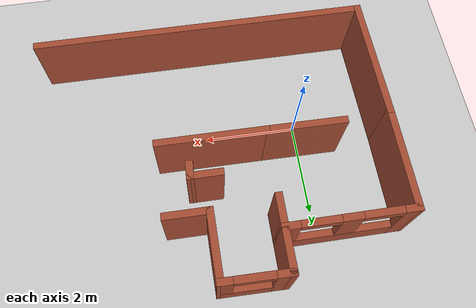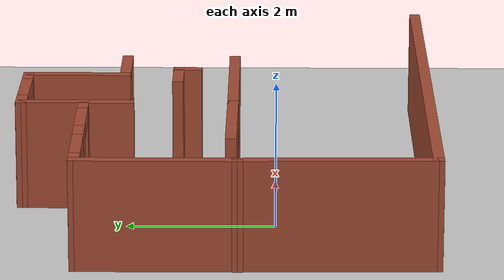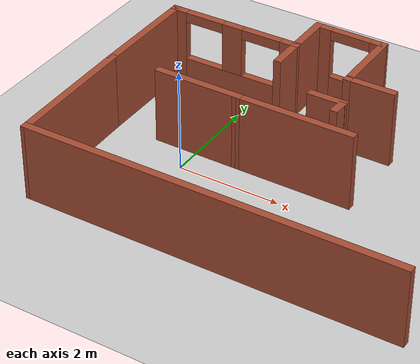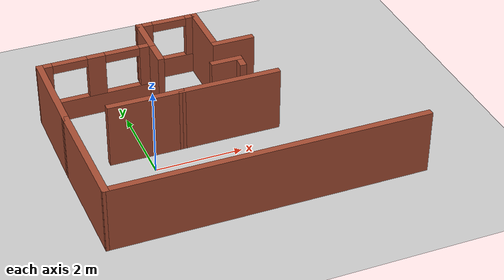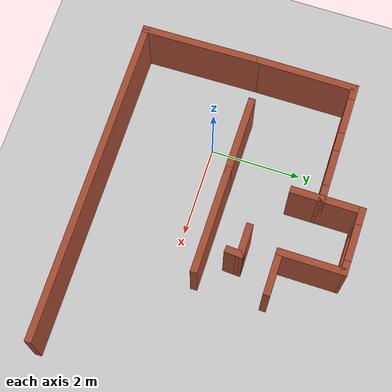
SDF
<sdf version="1.7">
 <world name="default">
  <model name="ground_plane">
   <static>1</static>
   <link name="link">
    <collision name="collision">
     <geometry><plane><normal>0 0 1</normal><size>100 100</size></plane></geometry>
     <surface><friction><ode><mu>100</mu><mu2>50</mu2></ode></friction></surface>
    </collision>
    <visual name="visual">
     <cast_shadows>0</cast_shadows>
     <geometry><plane><normal>0 0 1</normal><size>100 100</size></plane></geometry>
     <material>
      <script><uri>file://media/materials/scripts/gazebo.material</uri><name>Gazebo/Grey</name></script>
     </material>
    </visual>
   </link>
  </model>
  <model name="floorplan">
   <link name="Wall_54">
    <pose>-3.45985 0.603649 0 0 -0 0.004231</pose>
    <visual name="Wall_54_Visual_0">
     <pose>-1.19888 0 0.75 0 -0 0</pose>
     <geometry><box><size>0.35223 0.15 1.5</size></box></geometry>
     <material>
      <script><uri>file://media/materials/scripts/gazebo.material</uri><name>Gazebo/Bricks</name></script>
      <ambient>1 1 1 1</ambient>
      <shader type="pixel"/>
     </material>
     <meta><layer>0</layer></meta>
    </visual>
    <visual name="Wall_54_Visual_1">
     <pose>0.176115 0 0.25 0 -0 0</pose>
     <geometry><box><size>2.39777 0.15 0.5</size></box></geometry>
     <material>
      <script><uri>file://media/materials/scripts/gazebo.material</uri><name>Gazebo/Bricks</name></script>
      <ambient>1 1 1 1</ambient>
      <shader type="pixel"/>
     </material>
     <meta><layer>0</layer></meta>
    </visual>
    <visual name="Wall_54_Visual_2">
     <pose>-0.013166 0 1 0 -0 0</pose>
     <geometry><box><size>0.419208 0.15 1</size></box></geometry>
     <material>
      <script><uri>file://media/materials/scripts/gazebo.material</uri><name>Gazebo/Bricks</name></script>
      <ambient>1 1 1 1</ambient>
      <shader type="pixel"/>
     </material>
     <meta><layer>0</layer></meta>
    </visual>
    <visual name="Wall_54_Visual_3">
     <pose>1.18572 0 1 0 -0 0</pose>
     <geometry><box><size>0.378562 0.15 1</size></box></geometry>
     <material>
      <script><uri>file://media/materials/scripts/gazebo.material</uri><name>Gazebo/Bricks</name></script>
      <ambient>1 1 1 1</ambient>
      <shader type="pixel"/>
     </material>
     <meta><layer>0</layer></meta>
    </visual>
    <visual name="Wall_54_Visual_4">
     <pose>-0.62277 0 1.4 0 -0 0</pose>
     <geometry><box><size>0.8 0.15 0.2</size></box></geometry>
     <material>
      <script><uri>file://media/materials/scripts/gazebo.material</uri><name>Gazebo/Bricks</name></script>
      <ambient>1 1 1 1</ambient>
      <shader type="pixel"/>
     </material>
     <meta><layer>0</layer></meta>
    </visual>
    <visual name="Wall_54_Visual_5">
     <pose>0.596438 0 1.4 0 -0 0</pose>
     <geometry><box><size>0.8 0.15 0.2</size></box></geometry>
     <material>
      <script><uri>file://media/materials/scripts/gazebo.material</uri><name>Gazebo/Bricks</name></script>
      <ambient>1 1 1 1</ambient>
      <shader type="pixel"/>
     </material>
     <meta><layer>0</layer></meta>
    </visual>
    <collision name="Wall_54_Collision_0">
     <pose>-1.19888 0 0.75 0 -0 0</pose>
     <geometry><box><size>0.35223 0.15 1.5</size></box></geometry>
     <surface>
      <friction>
       <ode><mu>1</mu><mu2>1</mu2><fdir1>0 0 0</fdir1><slip1>0</slip1><slip2>0</slip2></ode>
       <torsional>
        <coefficient>1</coefficient>
        <patch_radius>0</patch_radius>
        <surface_radius>0</surface_radius>
        <use_patch_radius>1</use_patch_radius>
        <ode><slip>0</slip></ode>
       </torsional>
      </friction>
      <bounce><restitution_coefficient>0</restitution_coefficient><threshold>1e+06</threshold></bounce>
      <contact>
       <collide_without_contact>0</collide_without_contact>
       <collide_without_contact_bitmask>1</collide_without_contact_bitmask>
       <collide_bitmask>1</collide_bitmask>
       <ode>
        <soft_cfm>0</soft_cfm>
        <soft_erp>0.2</soft_erp>
        <kp>1e+13</kp>
        <kd>1</kd>
        <max_vel>0.01</max_vel>
        <min_depth>0</min_depth>
       </ode>
       <bullet>
        <split_impulse>1</split_impulse>
        <split_impulse_penetration_threshold>-0.01</split_impulse_penetration_threshold>
        <soft_cfm>0</soft_cfm>
        <soft_erp>0.2</soft_erp>
        <kp>1e+13</kp>
        <kd>1</kd>
       </bullet>
      </contact>
     </surface>
    </collision>
    <collision name="Wall_54_Collision_1">
     <pose>0.176115 0 0.25 0 -0 0</pose>
     <geometry><box><size>2.39777 0.15 0.5</size></box></geometry>
     <surface>
      <friction>
       <ode><mu>1</mu><mu2>1</mu2><fdir1>0 0 0</fdir1><slip1>0</slip1><slip2>0</slip2></ode>
       <torsional>
        <coefficient>1</coefficient>
        <patch_radius>0</patch_radius>
        <surface_radius>0</surface_radius>
        <use_patch_radius>1</use_patch_radius>
        <ode><slip>0</slip></ode>
       </torsional>
      </friction>
      <bounce><restitution_coefficient>0</restitution_coefficient><threshold>1e+06</threshold></bounce>
      <contact>
       <collide_without_contact>0</collide_without_contact>
       <collide_without_contact_bitmask>1</collide_without_contact_bitmask>
       <collide_bitmask>1</collide_bitmask>
       <ode>
        <soft_cfm>0</soft_cfm>
        <soft_erp>0.2</soft_erp>
        <kp>1e+13</kp>
        <kd>1</kd>
        <max_vel>0.01</max_vel>
        <min_depth>0</min_depth>
       </ode>
       <bullet>
        <split_impulse>1</split_impulse>
        <split_impulse_penetration_threshold>-0.01</split_impulse_penetration_threshold>
        <soft_cfm>0</soft_cfm>
        <soft_erp>0.2</soft_erp>
        <kp>1e+13</kp>
        <kd>1</kd>
       </bullet>
      </contact>
     </surface>
    </collision>
    <collision name="Wall_54_Collision_2">
     <pose>-0.013166 0 1 0 -0 0</pose>
     <geometry><box><size>0.419208 0.15 1</size></box></geometry>
     <surface>
      <friction>
       <ode><mu>1</mu><mu2>1</mu2><fdir1>0 0 0</fdir1><slip1>0</slip1><slip2>0</slip2></ode>
       <torsional>
        <coefficient>1</coefficient>
        <patch_radius>0</patch_radius>
        <surface_radius>0</surface_radius>
        <use_patch_radius>1</use_patch_radius>
        <ode><slip>0</slip></ode>
       </torsional>
      </friction>
      <bounce><restitution_coefficient>0</restitution_coefficient><threshold>1e+06</threshold></bounce>
      <contact>
       <collide_without_contact>0</collide_without_contact>
       <collide_without_contact_bitmask>1</collide_without_contact_bitmask>
       <collide_bitmask>1</collide_bitmask>
       <ode>
        <soft_cfm>0</soft_cfm>
        <soft_erp>0.2</soft_erp>
        <kp>1e+13</kp>
        <kd>1</kd>
        <max_vel>0.01</max_vel>
        <min_depth>0</min_depth>
       </ode>
       <bullet>
        <split_impulse>1</split_impulse>
        <split_impulse_penetration_threshold>-0.01</split_impulse_penetration_threshold>
        <soft_cfm>0</soft_cfm>
        <soft_erp>0.2</soft_erp>
        <kp>1e+13</kp>
        <kd>1</kd>
       </bullet>
      </contact>
     </surface>
    </collision>
    <collision name="Wall_54_Collision_3">
     <pose>1.18572 0 1 0 -0 0</pose>
     <geometry><box><size>0.378562 0.15 1</size></box></geometry>
     <surface>
      <friction>
       <ode><mu>1</mu><mu2>1</mu2><fdir1>0 0 0</fdir1><slip1>0</slip1><slip2>0</slip2></ode>
       <torsional>
        <coefficient>1</coefficient>
        <patch_radius>0</patch_radius>
        <surface_radius>0</surface_radius>
        <use_patch_radius>1</use_patch_radius>
        <ode><slip>0</slip></ode>
       </torsional>
      </friction>
      <bounce><restitution_coefficient>0</restitution_coefficient><threshold>1e+06</threshold></bounce>
      <contact>
       <collide_without_contact>0</collide_without_contact>
       <collide_without_contact_bitmask>1</collide_without_contact_bitmask>
       <collide_bitmask>1</collide_bitmask>
       <ode>
        <soft_cfm>0</soft_cfm>
        <soft_erp>0.2</soft_erp>
        <kp>1e+13</kp>
        <kd>1</kd>
        <max_vel>0.01</max_vel>
        <min_depth>0</min_depth>
       </ode>
       <bullet>
        <split_impulse>1</split_impulse>
        <split_impulse_penetration_threshold>-0.01</split_impulse_penetration_threshold>
        <soft_cfm>0</soft_cfm>
        <soft_erp>0.2</soft_erp>
        <kp>1e+13</kp>
        <kd>1</kd>
       </bullet>
      </contact>
     </surface>
    </collision>
    <collision name="Wall_54_Collision_4">
     <pose>-0.62277 0 1.4 0 -0 0</pose>
     <geometry><box><size>0.8 0.15 0.2</size></box></geometry>
     <surface>
      <friction>
       <ode><mu>1</mu><mu2>1</mu2><fdir1>0 0 0</fdir1><slip1>0</slip1><slip2>0</slip2></ode>
       <torsional>
        <coefficient>1</coefficient>
        <patch_radius>0</patch_radius>
        <surface_radius>0</surface_radius>
        <use_patch_radius>1</use_patch_radius>
        <ode><slip>0</slip></ode>
       </torsional>
      </friction>
      <bounce><restitution_coefficient>0</restitution_coefficient><threshold>1e+06</threshold></bounce>
      <contact>
       <collide_without_contact>0</collide_without_contact>
       <collide_without_contact_bitmask>1</collide_without_contact_bitmask>
       <collide_bitmask>1</collide_bitmask>
       <ode>
        <soft_cfm>0</soft_cfm>
        <soft_erp>0.2</soft_erp>
        <kp>1e+13</kp>
        <kd>1</kd>
        <max_vel>0.01</max_vel>
        <min_depth>0</min_depth>
       </ode>
       <bullet>
        <split_impulse>1</split_impulse>
        <split_impulse_penetration_threshold>-0.01</split_impulse_penetration_threshold>
        <soft_cfm>0</soft_cfm>
        <soft_erp>0.2</soft_erp>
        <kp>1e+13</kp>
        <kd>1</kd>
       </bullet>
      </contact>
     </surface>
    </collision>
    <collision name="Wall_54_Collision_5">
     <pose>0.596438 0 1.4 0 -0 0</pose>
     <geometry><box><size>0.8 0.15 0.2</size></box></geometry>
     <surface>
      <friction>
       <ode><mu>1</mu><mu2>1</mu2><fdir1>0 0 0</fdir1><slip1>0</slip1><slip2>0</slip2></ode>
       <torsional>
        <coefficient>1</coefficient>
        <patch_radius>0</patch_radius>
        <surface_radius>0</surface_radius>
        <use_patch_radius>1</use_patch_radius>
        <ode><slip>0</slip></ode>
       </torsional>
      </friction>
      <bounce><restitution_coefficient>0</restitution_coefficient><threshold>1e+06</threshold></bounce>
      <contact>
       <collide_without_contact>0</collide_without_contact>
       <collide_without_contact_bitmask>1</collide_without_contact_bitmask>
       <collide_bitmask>1</collide_bitmask>
       <ode>
        <soft_cfm>0</soft_cfm>
        <soft_erp>0.2</soft_erp>
        <kp>1e+13</kp>
        <kd>1</kd>
        <max_vel>0.01</max_vel>
        <min_depth>0</min_depth>
       </ode>
       <bullet>
        <split_impulse>1</split_impulse>
        <split_impulse_penetration_threshold>-0.01</split_impulse_penetration_threshold>
        <soft_cfm>0</soft_cfm>
        <soft_erp>0.2</soft_erp>
        <kp>1e+13</kp>
        <kd>1</kd>
       </bullet>
      </contact>
     </surface>
    </collision>
   </link>
   <link name="Wall_56">
    <pose>-2.15985 0.303649 0 0 0 -1.5708</pose>
    <visual name="Wall_56_Visual">
     <pose>0 0 0.75 0 -0 0</pose>
     <geometry><box><size>0.761 0.15 1.5</size></box></geometry>
     <material>
      <script><uri>file://media/materials/scripts/gazebo.material</uri><name>Gazebo/Bricks</name></script>
      <ambient>1 1 1 1</ambient>
      <shader type="pixel"/>
     </material>
     <meta><layer>0</layer></meta>
    </visual>
    <collision name="Wall_56_Collision">
     <pose>0 0 0.75 0 -0 0</pose>
     <geometry><box><size>0.761 0.15 1.5</size></box></geometry>
     <surface>
      <friction>
       <ode><mu>1</mu><mu2>1</mu2><fdir1>0 0 0</fdir1><slip1>0</slip1><slip2>0</slip2></ode>
       <torsional>
        <coefficient>1</coefficient>
        <patch_radius>0</patch_radius>
        <surface_radius>0</surface_radius>
        <use_patch_radius>1</use_patch_radius>
        <ode><slip>0</slip></ode>
       </torsional>
      </friction>
      <bounce><restitution_coefficient>0</restitution_coefficient><threshold>1e+06</threshold></bounce>
      <contact>
       <collide_without_contact>0</collide_without_contact>
       <collide_without_contact_bitmask>1</collide_without_contact_bitmask>
       <collide_bitmask>1</collide_bitmask>
       <ode>
        <soft_cfm>0</soft_cfm>
        <soft_erp>0.2</soft_erp>
        <kp>1e+13</kp>
        <kd>1</kd>
        <max_vel>0.01</max_vel>
        <min_depth>0</min_depth>
       </ode>
       <bullet>
        <split_impulse>1</split_impulse>
        <split_impulse_penetration_threshold>-0.01</split_impulse_penetration_threshold>
        <soft_cfm>0</soft_cfm>
        <soft_erp>0.2</soft_erp>
        <kp>1e+13</kp>
        <kd>1</kd>
       </bullet>
      </contact>
     </surface>
    </collision>
   </link>
   <link name="Wall_58">
    <pose>-2.15985 1.03465 0 0 -0 1.5708</pose>
    <visual name="Wall_58_Visual">
     <pose>0 0 0.75 0 -0 0</pose>
     <geometry><box><size>1.00024 0.15 1.5</size></box></geometry>
     <material>
      <script><uri>file://media/materials/scripts/gazebo.material</uri><name>Gazebo/Bricks</name></script>
      <ambient>1 1 1 1</ambient>
      <shader type="pixel"/>
     </material>
     <meta><layer>0</layer></meta>
    </visual>
    <collision name="Wall_58_Collision">
     <pose>0 0 0.75 0 -0 0</pose>
     <geometry><box><size>1.00024 0.15 1.5</size></box></geometry>
     <surface>
      <friction>
       <ode><mu>1</mu><mu2>1</mu2><fdir1>0 0 0</fdir1><slip1>0</slip1><slip2>0</slip2></ode>
       <torsional>
        <coefficient>1</coefficient>
        <patch_radius>0</patch_radius>
        <surface_radius>0</surface_radius>
        <use_patch_radius>1</use_patch_radius>
        <ode><slip>0</slip></ode>
       </torsional>
      </friction>
      <bounce><restitution_coefficient>0</restitution_coefficient><threshold>1e+06</threshold></bounce>
      <contact>
       <collide_without_contact>0</collide_without_contact>
       <collide_without_contact_bitmask>1</collide_without_contact_bitmask>
       <collide_bitmask>1</collide_bitmask>
       <ode>
        <soft_cfm>0</soft_cfm>
        <soft_erp>0.2</soft_erp>
        <kp>1e+13</kp>
        <kd>1</kd>
        <max_vel>0.01</max_vel>
        <min_depth>0</min_depth>
       </ode>
       <bullet>
        <split_impulse>1</split_impulse>
        <split_impulse_penetration_threshold>-0.01</split_impulse_penetration_threshold>
        <soft_cfm>0</soft_cfm>
        <soft_erp>0.2</soft_erp>
        <kp>1e+13</kp>
        <kd>1</kd>
       </bullet>
      </contact>
     </surface>
    </collision>
   </link>
   <link name="Wall_60">
    <pose>-1.48485 1.45415 0 0 0 -0.008889</pose>
    <visual name="Wall_60_Visual_0">
     <pose>-0.557435 0 0.75 0 -0 0</pose>
     <geometry><box><size>0.38513 0.15 1.5</size></box></geometry>
     <material>
      <script><uri>file://media/materials/scripts/gazebo.material</uri><name>Gazebo/Bricks</name></script>
      <ambient>1 1 1 1</ambient>
      <shader type="pixel"/>
     </material>
     <meta><layer>0</layer></meta>
    </visual>
    <visual name="Wall_60_Visual_1">
     <pose>0.192565 0 0.25 0 -0 0</pose>
     <geometry><box><size>1.11487 0.15 0.5</size></box></geometry>
     <material>
      <script><uri>file://media/materials/scripts/gazebo.material</uri><name>Gazebo/Bricks</name></script>
      <ambient>1 1 1 1</ambient>
      <shader type="pixel"/>
     </material>
     <meta><layer>0</layer></meta>
    </visual>
    <visual name="Wall_60_Visual_2">
     <pose>0.592565 0 1 0 -0 0</pose>
     <geometry><box><size>0.31487 0.15 1</size></box></geometry>
     <material>
      <script><uri>file://media/materials/scripts/gazebo.material</uri><name>Gazebo/Bricks</name></script>
      <ambient>1 1 1 1</ambient>
      <shader type="pixel"/>
     </material>
     <meta><layer>0</layer></meta>
    </visual>
    <visual name="Wall_60_Visual_3">
     <pose>0.03513 0 1.4 0 -0 0</pose>
     <geometry><box><size>0.8 0.15 0.2</size></box></geometry>
     <material>
      <script><uri>file://media/materials/scripts/gazebo.material</uri><name>Gazebo/Bricks</name></script>
      <ambient>1 1 1 1</ambient>
      <shader type="pixel"/>
     </material>
     <meta><layer>0</layer></meta>
    </visual>
    <collision name="Wall_60_Collision_0">
     <pose>-0.557435 0 0.75 0 -0 0</pose>
     <geometry><box><size>0.38513 0.15 1.5</size></box></geometry>
     <surface>
      <friction>
       <ode><mu>1</mu><mu2>1</mu2><fdir1>0 0 0</fdir1><slip1>0</slip1><slip2>0</slip2></ode>
       <torsional>
        <coefficient>1</coefficient>
        <patch_radius>0</patch_radius>
        <surface_radius>0</surface_radius>
        <use_patch_radius>1</use_patch_radius>
        <ode><slip>0</slip></ode>
       </torsional>
      </friction>
      <bounce><restitution_coefficient>0</restitution_coefficient><threshold>1e+06</threshold></bounce>
      <contact>
       <collide_without_contact>0</collide_without_contact>
       <collide_without_contact_bitmask>1</collide_without_contact_bitmask>
       <collide_bitmask>1</collide_bitmask>
       <ode>
        <soft_cfm>0</soft_cfm>
        <soft_erp>0.2</soft_erp>
        <kp>1e+13</kp>
        <kd>1</kd>
        <max_vel>0.01</max_vel>
        <min_depth>0</min_depth>
       </ode>
       <bullet>
        <split_impulse>1</split_impulse>
        <split_impulse_penetration_threshold>-0.01</split_impulse_penetration_threshold>
        <soft_cfm>0</soft_cfm>
        <soft_erp>0.2</soft_erp>
        <kp>1e+13</kp>
        <kd>1</kd>
       </bullet>
      </contact>
     </surface>
    </collision>
    <collision name="Wall_60_Collision_1">
     <pose>0.192565 0 0.25 0 -0 0</pose>
     <geometry><box><size>1.11487 0.15 0.5</size></box></geometry>
     <surface>
      <friction>
       <ode><mu>1</mu><mu2>1</mu2><fdir1>0 0 0</fdir1><slip1>0</slip1><slip2>0</slip2></ode>
       <torsional>
        <coefficient>1</coefficient>
        <patch_radius>0</patch_radius>
        <surface_radius>0</surface_radius>
        <use_patch_radius>1</use_patch_radius>
        <ode><slip>0</slip></ode>
       </torsional>
      </friction>
      <bounce><restitution_coefficient>0</restitution_coefficient><threshold>1e+06</threshold></bounce>
      <contact>
       <collide_without_contact>0</collide_without_contact>
       <collide_without_contact_bitmask>1</collide_without_contact_bitmask>
       <collide_bitmask>1</collide_bitmask>
       <ode>
        <soft_cfm>0</soft_cfm>
        <soft_erp>0.2</soft_erp>
        <kp>1e+13</kp>
        <kd>1</kd>
        <max_vel>0.01</max_vel>
        <min_depth>0</min_depth>
       </ode>
       <bullet>
        <split_impulse>1</split_impulse>
        <split_impulse_penetration_threshold>-0.01</split_impulse_penetration_threshold>
        <soft_cfm>0</soft_cfm>
        <soft_erp>0.2</soft_erp>
        <kp>1e+13</kp>
        <kd>1</kd>
       </bullet>
      </contact>
     </surface>
    </collision>
    <collision name="Wall_60_Collision_3">
     <pose>0.03513 0 1.4 0 -0 0</pose>
     <geometry><box><size>0.8 0.15 0.2</size></box></geometry>
     <surface>
      <friction>
       <ode><mu>1</mu><mu2>1</mu2><fdir1>0 0 0</fdir1><slip1>0</slip1><slip2>0</slip2></ode>
       <torsional>
        <coefficient>1</coefficient>
        <patch_radius>0</patch_radius>
        <surface_radius>0</surface_radius>
        <use_patch_radius>1</use_patch_radius>
        <ode><slip>0</slip></ode>
       </torsional>
      </friction>
      <bounce><restitution_coefficient>0</restitution_coefficient><threshold>1e+06</threshold></bounce>
      <contact>
       <collide_without_contact>0</collide_without_contact>
       <collide_without_contact_bitmask>1</collide_without_contact_bitmask>
       <collide_bitmask>1</collide_bitmask>
       <ode>
        <soft_cfm>0</soft_cfm>
        <soft_erp>0.2</soft_erp>
        <kp>1e+13</kp>
        <kd>1</kd>
        <max_vel>0.01</max_vel>
        <min_depth>0</min_depth>
       </ode>
       <bullet>
        <split_impulse>1</split_impulse>
        <split_impulse_penetration_threshold>-0.01</split_impulse_penetration_threshold>
        <soft_cfm>0</soft_cfm>
        <soft_erp>0.2</soft_erp>
        <kp>1e+13</kp>
        <kd>1</kd>
       </bullet>
      </contact>
     </surface>
    </collision>
    <collision name="Wall_60_Collision_2">
     <pose>0.592565 0 1 0 -0 0</pose>
     <geometry><box><size>0.31487 0.15 1</size></box></geometry>
     <surface>
      <friction>
       <ode><mu>1</mu><mu2>1</mu2><fdir1>0 0 0</fdir1><slip1>0</slip1><slip2>0</slip2></ode>
       <torsional>
        <coefficient>1</coefficient>
        <patch_radius>0</patch_radius>
        <surface_radius>0</surface_radius>
        <use_patch_radius>1</use_patch_radius>
        <ode><slip>0</slip></ode>
       </torsional>
      </friction>
      <bounce><restitution_coefficient>0</restitution_coefficient><threshold>1e+06</threshold></bounce>
      <contact>
       <collide_without_contact>0</collide_without_contact>
       <collide_without_contact_bitmask>1</collide_without_contact_bitmask>
       <collide_bitmask>1</collide_bitmask>
       <ode>
        <soft_cfm>0</soft_cfm>
        <soft_erp>0.2</soft_erp>
        <kp>1e+13</kp>
        <kd>1</kd>
        <max_vel>0.01</max_vel>
        <min_depth>0</min_depth>
       </ode>
       <bullet>
        <split_impulse>1</split_impulse>
        <split_impulse_penetration_threshold>-0.01</split_impulse_penetration_threshold>
        <soft_cfm>0</soft_cfm>
        <soft_erp>0.2</soft_erp>
        <kp>1e+13</kp>
        <kd>1</kd>
       </bullet>
      </contact>
     </surface>
    </collision>
   </link>
   <link name="Wall_61">
    <pose>-0.809851 0.773149 0 0 0 -1.5708</pose>
    <visual name="Wall_61_Visual">
     <pose>0 0 0.75 0 -0 0</pose>
     <geometry><box><size>1.5 0.15 1.5</size></box></geometry>
     <material>
      <script><uri>file://media/materials/scripts/gazebo.material</uri><name>Gazebo/Bricks</name></script>
      <ambient>1 1 1 1</ambient>
      <shader type="pixel"/>
     </material>
     <meta><layer>0</layer></meta>
    </visual>
    <collision name="Wall_61_Collision">
     <pose>0 0 0.75 0 -0 0</pose>
     <geometry><box><size>1.5 0.15 1.5</size></box></geometry>
     <surface>
      <friction>
       <ode><mu>1</mu><mu2>1</mu2><fdir1>0 0 0</fdir1><slip1>0</slip1><slip2>0</slip2></ode>
       <torsional>
        <coefficient>1</coefficient>
        <patch_radius>0</patch_radius>
        <surface_radius>0</surface_radius>
        <use_patch_radius>1</use_patch_radius>
        <ode><slip>0</slip></ode>
       </torsional>
      </friction>
      <bounce><restitution_coefficient>0</restitution_coefficient><threshold>1e+06</threshold></bounce>
      <contact>
       <collide_without_contact>0</collide_without_contact>
       <collide_without_contact_bitmask>1</collide_without_contact_bitmask>
       <collide_bitmask>1</collide_bitmask>
       <ode>
        <soft_cfm>0</soft_cfm>
        <soft_erp>0.2</soft_erp>
        <kp>1e+13</kp>
        <kd>1</kd>
        <max_vel>0.01</max_vel>
        <min_depth>0</min_depth>
       </ode>
       <bullet>
        <split_impulse>1</split_impulse>
        <split_impulse_penetration_threshold>-0.01</split_impulse_penetration_threshold>
        <soft_cfm>0</soft_cfm>
        <soft_erp>0.2</soft_erp>
        <kp>1e+13</kp>
        <kd>1</kd>
       </bullet>
      </contact>
     </surface>
    </collision>
   </link>
   <link name="Wall_62">
    <pose>-0.379351 0.098149 0 0 -0 0</pose>
    <visual name="Wall_62_Visual">
     <pose>0 0 0.75 0 -0 0</pose>
     <geometry><box><size>1.011 0.15 1.5</size></box></geometry>
     <material>
      <script><uri>file://media/materials/scripts/gazebo.material</uri><name>Gazebo/Bricks</name></script>
      <ambient>1 1 1 1</ambient>
      <shader type="pixel"/>
     </material>
     <meta><layer>0</layer></meta>
    </visual>
    <collision name="Wall_62_Collision">
     <pose>0 0 0.75 0 -0 0</pose>
     <geometry><box><size>1.011 0.15 1.5</size></box></geometry>
     <surface>
      <friction>
       <ode><mu>1</mu><mu2>1</mu2><fdir1>0 0 0</fdir1><slip1>0</slip1><slip2>0</slip2></ode>
       <torsional>
        <coefficient>1</coefficient>
        <patch_radius>0</patch_radius>
        <surface_radius>0</surface_radius>
        <use_patch_radius>1</use_patch_radius>
        <ode><slip>0</slip></ode>
       </torsional>
      </friction>
      <bounce><restitution_coefficient>0</restitution_coefficient><threshold>1e+06</threshold></bounce>
      <contact>
       <collide_without_contact>0</collide_without_contact>
       <collide_without_contact_bitmask>1</collide_without_contact_bitmask>
       <collide_bitmask>1</collide_bitmask>
       <ode>
        <soft_cfm>0</soft_cfm>
        <soft_erp>0.2</soft_erp>
        <kp>1e+13</kp>
        <kd>1</kd>
        <max_vel>0.01</max_vel>
        <min_depth>0</min_depth>
       </ode>
       <bullet>
        <split_impulse>1</split_impulse>
        <split_impulse_penetration_threshold>-0.01</split_impulse_penetration_threshold>
        <soft_cfm>0</soft_cfm>
        <soft_erp>0.2</soft_erp>
        <kp>1e+13</kp>
        <kd>1</kd>
       </bullet>
      </contact>
     </surface>
    </collision>
   </link>
   <link name="Wall_70">
    <pose>-0.529351 -0.768351 0 0 -0 1.51111</pose>
    <visual name="Wall_70_Visual">
     <pose>0 0 0.75 0 -0 0</pose>
     <geometry><box><size>0.40097 0.15 1.5</size></box></geometry>
     <material>
      <script><uri>file://media/materials/scripts/gazebo.material</uri><name>Gazebo/Bricks</name></script>
      <ambient>1 1 1 1</ambient>
      <shader type="pixel"/>
     </material>
     <meta><layer>0</layer></meta>
    </visual>
    <collision name="Wall_70_Collision">
     <pose>0 0 0.75 0 -0 0</pose>
     <geometry><box><size>0.40097 0.15 1.5</size></box></geometry>
     <surface>
      <friction>
       <ode><mu>1</mu><mu2>1</mu2><fdir1>0 0 0</fdir1><slip1>0</slip1><slip2>0</slip2></ode>
       <torsional>
        <coefficient>1</coefficient>
        <patch_radius>0</patch_radius>
        <surface_radius>0</surface_radius>
        <use_patch_radius>1</use_patch_radius>
        <ode><slip>0</slip></ode>
       </torsional>
      </friction>
      <bounce><restitution_coefficient>0</restitution_coefficient><threshold>1e+06</threshold></bounce>
      <contact>
       <collide_without_contact>0</collide_without_contact>
       <collide_without_contact_bitmask>1</collide_without_contact_bitmask>
       <collide_bitmask>1</collide_bitmask>
       <ode>
        <soft_cfm>0</soft_cfm>
        <soft_erp>0.2</soft_erp>
        <kp>1e+13</kp>
        <kd>1</kd>
        <max_vel>0.01</max_vel>
        <min_depth>0</min_depth>
       </ode>
       <bullet>
        <split_impulse>1</split_impulse>
        <split_impulse_penetration_threshold>-0.01</split_impulse_penetration_threshold>
        <soft_cfm>0</soft_cfm>
        <soft_erp>0.2</soft_erp>
        <kp>1e+13</kp>
        <kd>1</kd>
       </bullet>
      </contact>
     </surface>
    </collision>
   </link>
   <link name="Wall_71">
    <pose>-0.821851 -0.642851 0 0 -0 3.14159</pose>
    <visual name="Wall_71_Visual">
     <pose>0 0 0.75 0 -0 0</pose>
     <geometry><box><size>0.75 0.15 1.5</size></box></geometry>
     <material>
      <script><uri>file://media/materials/scripts/gazebo.material</uri><name>Gazebo/Bricks</name></script>
      <ambient>1 1 1 1</ambient>
      <shader type="pixel"/>
     </material>
     <meta><layer>0</layer></meta>
    </visual>
    <collision name="Wall_71_Collision">
     <pose>0 0 0.75 0 -0 0</pose>
     <geometry><box><size>0.75 0.15 1.5</size></box></geometry>
     <surface>
      <friction>
       <ode><mu>1</mu><mu2>1</mu2><fdir1>0 0 0</fdir1><slip1>0</slip1><slip2>0</slip2></ode>
       <torsional>
        <coefficient>1</coefficient>
        <patch_radius>0</patch_radius>
        <surface_radius>0</surface_radius>
        <use_patch_radius>1</use_patch_radius>
        <ode><slip>0</slip></ode>
       </torsional>
      </friction>
      <bounce><restitution_coefficient>0</restitution_coefficient><threshold>1e+06</threshold></bounce>
      <contact>
       <collide_without_contact>0</collide_without_contact>
       <collide_without_contact_bitmask>1</collide_without_contact_bitmask>
       <collide_bitmask>1</collide_bitmask>
       <ode>
        <soft_cfm>0</soft_cfm>
        <soft_erp>0.2</soft_erp>
        <kp>1e+13</kp>
        <kd>1</kd>
        <max_vel>0.01</max_vel>
        <min_depth>0</min_depth>
       </ode>
       <bullet>
        <split_impulse>1</split_impulse>
        <split_impulse_penetration_threshold>-0.01</split_impulse_penetration_threshold>
        <soft_cfm>0</soft_cfm>
        <soft_erp>0.2</soft_erp>
        <kp>1e+13</kp>
        <kd>1</kd>
       </bullet>
      </contact>
     </surface>
    </collision>
   </link>
   <link name="Wall_74">
    <pose>-1.05885 -1.42135 0 0 0 -0.00315</pose>
    <visual name="Wall_74_Visual">
     <pose>0 0 0.75 0 -0 0</pose>
     <geometry><box><size>2.37213 0.15 1.5</size></box></geometry>
     <material>
      <script><uri>file://media/materials/scripts/gazebo.material</uri><name>Gazebo/Bricks</name></script>
      <ambient>1 1 1 1</ambient>
      <shader type="pixel"/>
     </material>
     <meta><layer>0</layer></meta>
    </visual>
    <collision name="Wall_74_Collision">
     <pose>0 0 0.75 0 -0 0</pose>
     <geometry><box><size>2.37213 0.15 1.5</size></box></geometry>
     <surface>
      <friction>
       <ode><mu>1</mu><mu2>1</mu2><fdir1>0 0 0</fdir1><slip1>0</slip1><slip2>0</slip2></ode>
       <torsional>
        <coefficient>1</coefficient>
        <patch_radius>0</patch_radius>
        <surface_radius>0</surface_radius>
        <use_patch_radius>1</use_patch_radius>
        <ode><slip>0</slip></ode>
       </torsional>
      </friction>
      <bounce><restitution_coefficient>0</restitution_coefficient><threshold>1e+06</threshold></bounce>
      <contact>
       <collide_without_contact>0</collide_without_contact>
       <collide_without_contact_bitmask>1</collide_without_contact_bitmask>
       <collide_bitmask>1</collide_bitmask>
       <ode>
        <soft_cfm>0</soft_cfm>
        <soft_erp>0.2</soft_erp>
        <kp>1e+13</kp>
        <kd>1</kd>
        <max_vel>0.01</max_vel>
        <min_depth>0</min_depth>
       </ode>
       <bullet>
        <split_impulse>1</split_impulse>
        <split_impulse_penetration_threshold>-0.01</split_impulse_penetration_threshold>
        <soft_cfm>0</soft_cfm>
        <soft_erp>0.2</soft_erp>
        <kp>1e+13</kp>
        <kd>1</kd>
       </bullet>
      </contact>
     </surface>
    </collision>
   </link>
   <link name="Wall_77">
    <pose>-2.97585 -1.41235 0 0 -0 3.13477</pose>
    <visual name="Wall_77_Visual">
     <pose>0 0 0.75 0 -0 0</pose>
     <geometry><box><size>1.76193 0.15 1.5</size></box></geometry>
     <material>
      <script><uri>file://media/materials/scripts/gazebo.material</uri><name>Gazebo/Bricks</name></script>
      <ambient>1 1 1 1</ambient>
      <shader type="pixel"/>
     </material>
     <meta><layer>0</layer></meta>
    </visual>
    <collision name="Wall_77_Collision">
     <pose>0 0 0.75 0 -0 0</pose>
     <geometry><box><size>1.76193 0.15 1.5</size></box></geometry>
     <surface>
      <friction>
       <ode><mu>1</mu><mu2>1</mu2><fdir1>0 0 0</fdir1><slip1>0</slip1><slip2>0</slip2></ode>
       <torsional>
        <coefficient>1</coefficient>
        <patch_radius>0</patch_radius>
        <surface_radius>0</surface_radius>
        <use_patch_radius>1</use_patch_radius>
        <ode><slip>0</slip></ode>
       </torsional>
      </friction>
      <bounce><restitution_coefficient>0</restitution_coefficient><threshold>1e+06</threshold></bounce>
      <contact>
       <collide_without_contact>0</collide_without_contact>
       <collide_without_contact_bitmask>1</collide_without_contact_bitmask>
       <collide_bitmask>1</collide_bitmask>
       <ode>
        <soft_cfm>0</soft_cfm>
        <soft_erp>0.2</soft_erp>
        <kp>1e+13</kp>
        <kd>1</kd>
        <max_vel>0.01</max_vel>
        <min_depth>0</min_depth>
       </ode>
       <bullet>
        <split_impulse>1</split_impulse>
        <split_impulse_penetration_threshold>-0.01</split_impulse_penetration_threshold>
        <soft_cfm>0</soft_cfm>
        <soft_erp>0.2</soft_erp>
        <kp>1e+13</kp>
        <kd>1</kd>
       </bullet>
      </contact>
     </surface>
    </collision>
   </link>
   <link name="Wall_79">
    <pose>-4.75985 -0.451851 0 0 0 -1.5708</pose>
    <visual name="Wall_79_Visual">
     <pose>0 0 0.75 0 -0 0</pose>
     <geometry><box><size>2.25 0.15 1.5</size></box></geometry>
     <material>
      <script><uri>file://media/materials/scripts/gazebo.material</uri><name>Gazebo/Bricks</name></script>
      <ambient>1 1 1 1</ambient>
      <shader type="pixel"/>
     </material>
     <meta><layer>0</layer></meta>
    </visual>
    <collision name="Wall_79_Collision">
     <pose>0 0 0.75 0 -0 0</pose>
     <geometry><box><size>2.25 0.15 1.5</size></box></geometry>
     <surface>
      <friction>
       <ode><mu>1</mu><mu2>1</mu2><fdir1>0 0 0</fdir1><slip1>0</slip1><slip2>0</slip2></ode>
       <torsional>
        <coefficient>1</coefficient>
        <patch_radius>0</patch_radius>
        <surface_radius>0</surface_radius>
        <use_patch_radius>1</use_patch_radius>
        <ode><slip>0</slip></ode>
       </torsional>
      </friction>
      <bounce><restitution_coefficient>0</restitution_coefficient><threshold>1e+06</threshold></bounce>
      <contact>
       <collide_without_contact>0</collide_without_contact>
       <collide_without_contact_bitmask>1</collide_without_contact_bitmask>
       <collide_bitmask>1</collide_bitmask>
       <ode>
        <soft_cfm>0</soft_cfm>
        <soft_erp>0.2</soft_erp>
        <kp>1e+13</kp>
        <kd>1</kd>
        <max_vel>0.01</max_vel>
        <min_depth>0</min_depth>
       </ode>
       <bullet>
        <split_impulse>1</split_impulse>
        <split_impulse_penetration_threshold>-0.01</split_impulse_penetration_threshold>
        <soft_cfm>0</soft_cfm>
        <soft_erp>0.2</soft_erp>
        <kp>1e+13</kp>
        <kd>1</kd>
       </bullet>
      </contact>
     </surface>
    </collision>
   </link>
   <link name="Wall_81">
    <pose>-4.73735 -2.79035 0 0 0 -1.55334</pose>
    <visual name="Wall_81_Visual">
     <pose>0 0 0.75 0 -0 0</pose>
     <geometry><box><size>2.72739 0.15 1.5</size></box></geometry>
     <material>
      <script><uri>file://media/materials/scripts/gazebo.material</uri><name>Gazebo/Bricks</name></script>
      <ambient>1 1 1 1</ambient>
      <shader type="pixel"/>
     </material>
     <meta><layer>0</layer></meta>
    </visual>
    <collision name="Wall_81_Collision">
     <pose>0 0 0.75 0 -0 0</pose>
     <geometry><box><size>2.72739 0.15 1.5</size></box></geometry>
     <surface>
      <friction>
       <ode><mu>1</mu><mu2>1</mu2><fdir1>0 0 0</fdir1><slip1>0</slip1><slip2>0</slip2></ode>
       <torsional>
        <coefficient>1</coefficient>
        <patch_radius>0</patch_radius>
        <surface_radius>0</surface_radius>
        <use_patch_radius>1</use_patch_radius>
        <ode><slip>0</slip></ode>
       </torsional>
      </friction>
      <bounce><restitution_coefficient>0</restitution_coefficient><threshold>1e+06</threshold></bounce>
      <contact>
       <collide_without_contact>0</collide_without_contact>
       <collide_without_contact_bitmask>1</collide_without_contact_bitmask>
       <collide_bitmask>1</collide_bitmask>
       <ode>
        <soft_cfm>0</soft_cfm>
        <soft_erp>0.2</soft_erp>
        <kp>1e+13</kp>
        <kd>1</kd>
        <max_vel>0.01</max_vel>
        <min_depth>0</min_depth>
       </ode>
       <bullet>
        <split_impulse>1</split_impulse>
        <split_impulse_penetration_threshold>-0.01</split_impulse_penetration_threshold>
        <soft_cfm>0</soft_cfm>
        <soft_erp>0.2</soft_erp>
        <kp>1e+13</kp>
        <kd>1</kd>
       </bullet>
      </contact>
     </surface>
    </collision>
   </link>
   <link name="Wall_82">
    <pose>-1.16485 -4.07885 0 0 -0 0</pose>
    <visual name="Wall_82_Visual">
     <pose>0 0 0.75 0 -0 0</pose>
     <geometry><box><size>7.25 0.15 1.5</size></box></geometry>
     <material>
      <script><uri>file://media/materials/scripts/gazebo.material</uri><name>Gazebo/Bricks</name></script>
      <ambient>1 1 1 1</ambient>
      <shader type="pixel"/>
     </material>
     <meta><layer>0</layer></meta>
    </visual>
    <collision name="Wall_82_Collision">
     <pose>0 0 0.75 0 -0 0</pose>
     <geometry><box><size>7.25 0.15 1.5</size></box></geometry>
     <surface>
      <friction>
       <ode><mu>1</mu><mu2>1</mu2><fdir1>0 0 0</fdir1><slip1>0</slip1><slip2>0</slip2></ode>
       <torsional>
        <coefficient>1</coefficient>
        <patch_radius>0</patch_radius>
        <surface_radius>0</surface_radius>
        <use_patch_radius>1</use_patch_radius>
        <ode><slip>0</slip></ode>
       </torsional>
      </friction>
      <bounce><restitution_coefficient>0</restitution_coefficient><threshold>1e+06</threshold></bounce>
      <contact>
       <collide_without_contact>0</collide_without_contact>
       <collide_without_contact_bitmask>1</collide_without_contact_bitmask>
       <collide_bitmask>1</collide_bitmask>
       <ode>
        <soft_cfm>0</soft_cfm>
        <soft_erp>0.2</soft_erp>
        <kp>1e+13</kp>
        <kd>1</kd>
        <max_vel>0.01</max_vel>
        <min_depth>0</min_depth>
       </ode>
       <bullet>
        <split_impulse>1</split_impulse>
        <split_impulse_penetration_threshold>-0.01</split_impulse_penetration_threshold>
        <soft_cfm>0</soft_cfm>
        <soft_erp>0.2</soft_erp>
        <kp>1e+13</kp>
        <kd>1</kd>
       </bullet>
      </contact>
     </surface>
    </collision>
   </link>
   <static>1</static>
   <pose>3 2 0 0 -0 0</pose>
  </model>
 </world>
</sdf>
